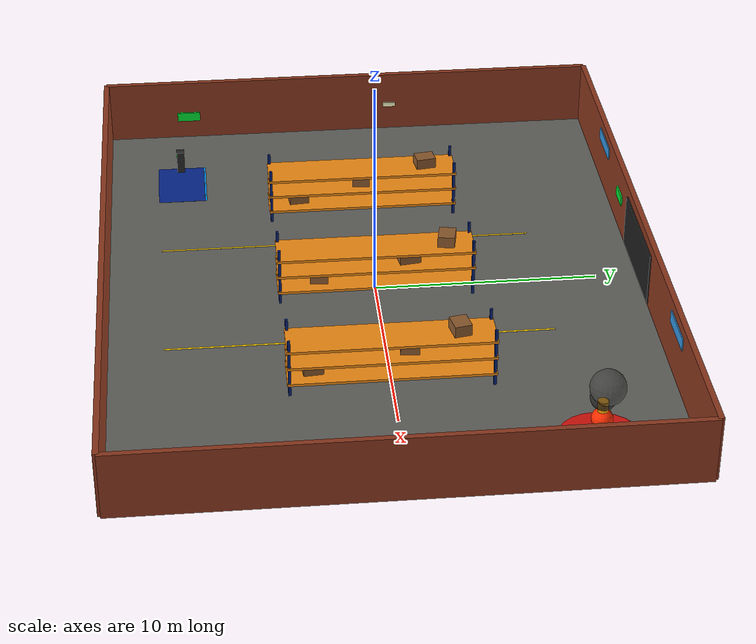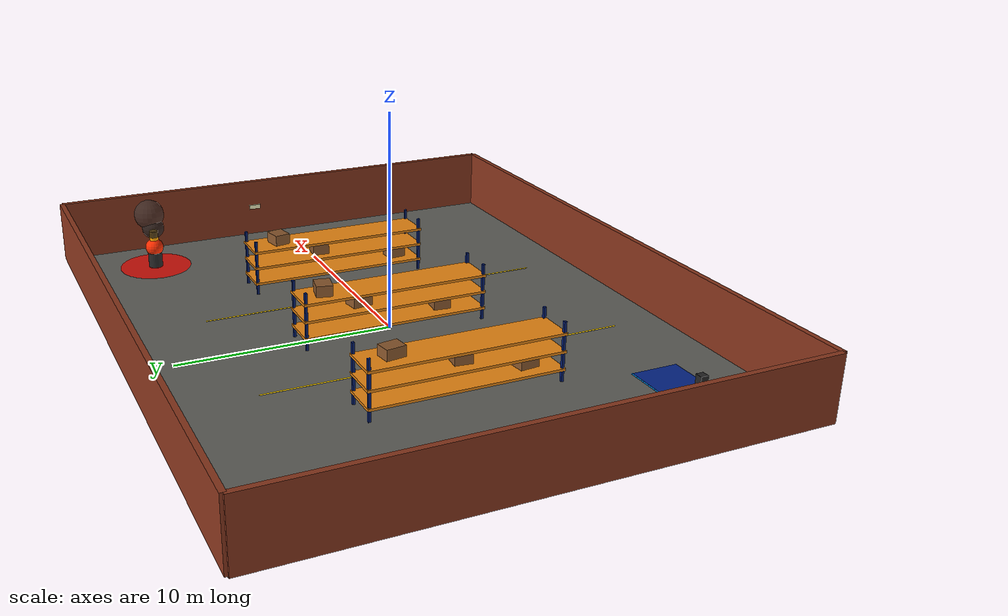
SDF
<?xml version="1.0" ?>
<sdf version="1.6">
  <world name="fireguard_professional_warehouse">

    <include>
      <uri>model://sun</uri>
    </include>

    <scene>
      <ambient>0.35 0.35 0.35 1</ambient>
      <background>0.04 0.04 0.04 1</background>
      <shadows>true</shadows>
    </scene>

    <physics name="default_physics" type="ode">
      <real_time_update_rate>1000</real_time_update_rate>
      <max_step_size>0.001</max_step_size>
      <real_time_factor>1</real_time_factor>
    </physics>

    <!-- Main Lights -->
    <light name="warehouse_light_left" type="point">
      <pose>-7 -2 6 0 0 0</pose>
      <diffuse>1 1 0.95 1</diffuse>
      <specular>0.4 0.4 0.4 1</specular>
      <attenuation>
        <range>18</range>
        <constant>0.6</constant>
        <linear>0.04</linear>
        <quadratic>0.005</quadratic>
      </attenuation>
    </light>

    <light name="warehouse_light_right" type="point">
      <pose>7 -2 6 0 0 0</pose>
      <diffuse>1 1 0.95 1</diffuse>
      <specular>0.4 0.4 0.4 1</specular>
      <attenuation>
        <range>18</range>
        <constant>0.6</constant>
        <linear>0.04</linear>
        <quadratic>0.005</quadratic>
      </attenuation>
    </light>

    <light name="fire_glow" type="point">
      <pose>12 8 2.2 0 0 0</pose>
      <diffuse>1 0.25 0.05 1</diffuse>
      <specular>1 0.15 0.05 1</specular>
      <attenuation>
        <range>10</range>
        <constant>0.8</constant>
        <linear>0.08</linear>
        <quadratic>0.01</quadratic>
      </attenuation>
    </light>

    <!-- Floor -->
    <model name="concrete_floor">
      <static>true</static>
      <pose>0 0 -0.025 0 0 0</pose>
      <link name="link">
        <collision name="collision">
          <geometry>
            <box><size>30 24 0.05</size></box>
          </geometry>
        </collision>
        <visual name="visual">
          <geometry>
            <box><size>30 24 0.05</size></box>
          </geometry>
          <material>
            <ambient>0.28 0.28 0.28 1</ambient>
            <diffuse>0.38 0.38 0.36 1</diffuse>
          </material>
        </visual>
      </link>
    </model>

    <!-- Walls -->
    <model name="wall_back">
      <static>true</static>
      <pose>0 12 1.5 0 0 0</pose>
      <link name="link">
        <collision name="collision">
          <geometry><box><size>30 0.25 3.0</size></box></geometry>
        </collision>
        <visual name="visual">
          <geometry><box><size>30 0.25 3.0</size></box></geometry>
          <material>
            <ambient>0.42 0.16 0.08 1</ambient>
            <diffuse>0.55 0.22 0.12 1</diffuse>
          </material>
        </visual>
      </link>
    </model>

    <model name="wall_front">
      <static>true</static>
      <pose>0 -12 1.5 0 0 0</pose>
      <link name="link">
        <collision name="collision">
          <geometry><box><size>30 0.25 3.0</size></box></geometry>
        </collision>
        <visual name="visual">
          <geometry><box><size>30 0.25 3.0</size></box></geometry>
          <material>
            <ambient>0.42 0.16 0.08 1</ambient>
            <diffuse>0.55 0.22 0.12 1</diffuse>
          </material>
        </visual>
      </link>
    </model>

    <model name="wall_left">
      <static>true</static>
      <pose>-15 0 1.5 0 0 0</pose>
      <link name="link">
        <collision name="collision">
          <geometry><box><size>0.25 24 3.0</size></box></geometry>
        </collision>
        <visual name="visual">
          <geometry><box><size>0.25 24 3.0</size></box></geometry>
          <material>
            <ambient>0.42 0.16 0.08 1</ambient>
            <diffuse>0.55 0.22 0.12 1</diffuse>
          </material>
        </visual>
      </link>
    </model>

    <model name="wall_right">
      <static>true</static>
      <pose>15 0 1.5 0 0 0</pose>
      <link name="link">
        <collision name="collision">
          <geometry><box><size>0.25 24 3.0</size></box></geometry>
        </collision>
        <visual name="visual">
          <geometry><box><size>0.25 24 3.0</size></box></geometry>
          <material>
            <ambient>0.42 0.16 0.08 1</ambient>
            <diffuse>0.55 0.22 0.12 1</diffuse>
          </material>
        </visual>
      </link>
    </model>

    <!-- Warehouse Door -->
    <model name="warehouse_door">
      <static>true</static>
      <pose>0 11.84 1.35 0 0 0</pose>
      <link name="link">
        <visual name="visual">
          <geometry><box><size>5.2 0.08 2.4</size></box></geometry>
          <material>
            <ambient>0.06 0.06 0.06 1</ambient>
            <diffuse>0.12 0.12 0.12 1</diffuse>
          </material>
        </visual>
      </link>
    </model>

    <!-- Windows -->
    <model name="window_left">
      <static>true</static>
      <pose>-8 11.82 2.35 0 0 0</pose>
      <link name="link">
        <visual name="visual">
          <geometry><box><size>2.2 0.05 0.55</size></box></geometry>
          <material>
            <ambient>0.15 0.45 0.75 1</ambient>
            <diffuse>0.2 0.6 0.9 1</diffuse>
            <emissive>0.05 0.15 0.25 1</emissive>
          </material>
        </visual>
      </link>
    </model>

    <model name="window_right">
      <static>true</static>
      <pose>8 11.82 2.35 0 0 0</pose>
      <link name="link">
        <visual name="visual">
          <geometry><box><size>2.2 0.05 0.55</size></box></geometry>
          <material>
            <ambient>0.15 0.45 0.75 1</ambient>
            <diffuse>0.2 0.6 0.9 1</diffuse>
            <emissive>0.05 0.15 0.25 1</emissive>
          </material>
        </visual>
      </link>
    </model>

    <!-- Robot Charging Station -->
    <model name="robot_station_floor">
      <static>true</static>
      <pose>-10 -8.5 0.002 0 0 0</pose>
      <link name="link">
        <visual name="visual">
          <geometry><box><size>3.2 2.2 0.004</size></box></geometry>
          <material>
            <ambient>0.02 0.08 0.25 1</ambient>
            <diffuse>0.02 0.15 0.55 1</diffuse>
            <emissive>0 0.02 0.08 1</emissive>
          </material>
        </visual>
      </link>
    </model>

    <model name="charging_pillar">
      <static>true</static>
      <pose>-11.4 -8.5 0.55 0 0 0</pose>
      <link name="link">
        <visual name="body">
          <geometry><box><size>0.35 0.35 1.1</size></box></geometry>
          <material>
            <ambient>0.08 0.08 0.08 1</ambient>
            <diffuse>0.15 0.15 0.15 1</diffuse>
          </material>
        </visual>
        <visual name="green_light">
          <pose>0 -0.18 0.25 0 0 0</pose>
          <geometry><box><size>0.18 0.02 0.18</size></box></geometry>
          <material>
            <ambient>0 1 0.15 1</ambient>
            <diffuse>0 1 0.15 1</diffuse>
            <emissive>0 1 0.15 1</emissive>
          </material>
        </visual>
      </link>
    </model>

    <!-- Aisle Lines -->
    <model name="aisle_line_left">
      <static>true</static>
      <pose>-4 -1 0.006 0 0 0</pose>
      <link name="link">
        <visual name="visual">
          <geometry><box><size>0.10 17 0.002</size></box></geometry>
          <material>
            <ambient>1 0.82 0 1</ambient>
            <diffuse>1 0.82 0 1</diffuse>
          </material>
        </visual>
      </link>
    </model>

    <model name="aisle_line_right">
      <static>true</static>
      <pose>4 -1 0.006 0 0 0</pose>
      <link name="link">
        <visual name="visual">
          <geometry><box><size>0.10 17 0.002</size></box></geometry>
          <material>
            <ambient>1 0.82 0 1</ambient>
            <diffuse>1 0.82 0 1</diffuse>
          </material>
        </visual>
      </link>
    </model>

    <model name="station_label_line">
      <static>true</static>
      <pose>-10 -7.35 0.006 0 0 0</pose>
      <link name="link">
        <visual name="visual">
          <geometry><box><size>3.2 0.08 0.002</size></box></geometry>
          <material>
            <ambient>0 0.6 1 1</ambient>
            <diffuse>0 0.6 1 1</diffuse>
          </material>
        </visual>
      </link>
    </model>

    <!-- Shelves with boxes -->
    <model name="shelf_left">
      <static>true</static>
      <pose>-7 0 0 0 0 0</pose>

      <link name="frame_collision">
        <pose>0 0 1.15 0 0 0</pose>
        <collision name="collision">
          <geometry><box><size>1.7 8.8 2.3</size></box></geometry>
        </collision>
      </link>

      <link name="visual_parts">
        <visual name="post_1"><pose>-0.8 -4.3 1.35 0 0 0</pose><geometry><box><size>0.12 0.12 2.7</size></box></geometry><material><ambient>0.02 0.07 0.25 1</ambient><diffuse>0.02 0.12 0.45 1</diffuse></material></visual>
        <visual name="post_2"><pose>0.8 -4.3 1.35 0 0 0</pose><geometry><box><size>0.12 0.12 2.7</size></box></geometry><material><ambient>0.02 0.07 0.25 1</ambient><diffuse>0.02 0.12 0.45 1</diffuse></material></visual>
        <visual name="post_3"><pose>-0.8 4.3 1.35 0 0 0</pose><geometry><box><size>0.12 0.12 2.7</size></box></geometry><material><ambient>0.02 0.07 0.25 1</ambient><diffuse>0.02 0.12 0.45 1</diffuse></material></visual>
        <visual name="post_4"><pose>0.8 4.3 1.35 0 0 0</pose><geometry><box><size>0.12 0.12 2.7</size></box></geometry><material><ambient>0.02 0.07 0.25 1</ambient><diffuse>0.02 0.12 0.45 1</diffuse></material></visual>

        <visual name="layer_1"><pose>0 0 0.55 0 0 0</pose><geometry><box><size>1.8 8.8 0.12</size></box></geometry><material><ambient>0.95 0.48 0.05 1</ambient><diffuse>0.95 0.55 0.08 1</diffuse></material></visual>
        <visual name="layer_2"><pose>0 0 1.35 0 0 0</pose><geometry><box><size>1.8 8.8 0.12</size></box></geometry><material><ambient>0.95 0.48 0.05 1</ambient><diffuse>0.95 0.55 0.08 1</diffuse></material></visual>
        <visual name="layer_3"><pose>0 0 2.15 0 0 0</pose><geometry><box><size>1.8 8.8 0.12</size></box></geometry><material><ambient>0.95 0.48 0.05 1</ambient><diffuse>0.95 0.55 0.08 1</diffuse></material></visual>

        <visual name="box_1"><pose>0 -3 0.9 0 0 0.1</pose><geometry><box><size>0.75 0.9 0.55</size></box></geometry><material><ambient>0.38 0.24 0.12 1</ambient><diffuse>0.55 0.35 0.18 1</diffuse></material></visual>
        <visual name="box_2"><pose>0 0 1.7 0 0 -0.1</pose><geometry><box><size>0.8 0.8 0.6</size></box></geometry><material><ambient>0.38 0.24 0.12 1</ambient><diffuse>0.55 0.35 0.18 1</diffuse></material></visual>
        <visual name="box_3"><pose>0 3 2.45 0 0 0.15</pose><geometry><box><size>0.7 0.9 0.5</size></box></geometry><material><ambient>0.38 0.24 0.12 1</ambient><diffuse>0.55 0.35 0.18 1</diffuse></material></visual>
      </link>
    </model>

    <model name="shelf_center">
      <static>true</static>
      <pose>0 0 0 0 0 0</pose>

      <link name="frame_collision">
        <pose>0 0 1.15 0 0 0</pose>
        <collision name="collision">
          <geometry><box><size>1.7 8.8 2.3</size></box></geometry>
        </collision>
      </link>

      <link name="visual_parts">
        <visual name="post_1"><pose>-0.8 -4.3 1.35 0 0 0</pose><geometry><box><size>0.12 0.12 2.7</size></box></geometry><material><ambient>0.02 0.07 0.25 1</ambient><diffuse>0.02 0.12 0.45 1</diffuse></material></visual>
        <visual name="post_2"><pose>0.8 -4.3 1.35 0 0 0</pose><geometry><box><size>0.12 0.12 2.7</size></box></geometry><material><ambient>0.02 0.07 0.25 1</ambient><diffuse>0.02 0.12 0.45 1</diffuse></material></visual>
        <visual name="post_3"><pose>-0.8 4.3 1.35 0 0 0</pose><geometry><box><size>0.12 0.12 2.7</size></box></geometry><material><ambient>0.02 0.07 0.25 1</ambient><diffuse>0.02 0.12 0.45 1</diffuse></material></visual>
        <visual name="post_4"><pose>0.8 4.3 1.35 0 0 0</pose><geometry><box><size>0.12 0.12 2.7</size></box></geometry><material><ambient>0.02 0.07 0.25 1</ambient><diffuse>0.02 0.12 0.45 1</diffuse></material></visual>

        <visual name="layer_1"><pose>0 0 0.55 0 0 0</pose><geometry><box><size>1.8 8.8 0.12</size></box></geometry><material><ambient>0.95 0.48 0.05 1</ambient><diffuse>0.95 0.55 0.08 1</diffuse></material></visual>
        <visual name="layer_2"><pose>0 0 1.35 0 0 0</pose><geometry><box><size>1.8 8.8 0.12</size></box></geometry><material><ambient>0.95 0.48 0.05 1</ambient><diffuse>0.95 0.55 0.08 1</diffuse></material></visual>
        <visual name="layer_3"><pose>0 0 2.15 0 0 0</pose><geometry><box><size>1.8 8.8 0.12</size></box></geometry><material><ambient>0.95 0.48 0.05 1</ambient><diffuse>0.95 0.55 0.08 1</diffuse></material></visual>

        <visual name="box_1"><pose>0 -2.5 0.9 0 0 -0.1</pose><geometry><box><size>0.8 0.8 0.55</size></box></geometry><material><ambient>0.38 0.24 0.12 1</ambient><diffuse>0.55 0.35 0.18 1</diffuse></material></visual>
        <visual name="box_2"><pose>0 1.5 1.7 0 0 0.15</pose><geometry><box><size>0.75 0.95 0.6</size></box></geometry><material><ambient>0.38 0.24 0.12 1</ambient><diffuse>0.55 0.35 0.18 1</diffuse></material></visual>
        <visual name="box_3"><pose>0 3.2 2.45 0 0 -0.2</pose><geometry><box><size>0.9 0.75 0.55</size></box></geometry><material><ambient>0.38 0.24 0.12 1</ambient><diffuse>0.55 0.35 0.18 1</diffuse></material></visual>
      </link>
    </model>

    <model name="shelf_right">
      <static>true</static>
      <pose>7 0 0 0 0 0</pose>

      <link name="frame_collision">
        <pose>0 0 1.15 0 0 0</pose>
        <collision name="collision">
          <geometry><box><size>1.7 8.8 2.3</size></box></geometry>
        </collision>
      </link>

      <link name="visual_parts">
        <visual name="post_1"><pose>-0.8 -4.3 1.35 0 0 0</pose><geometry><box><size>0.12 0.12 2.7</size></box></geometry><material><ambient>0.02 0.07 0.25 1</ambient><diffuse>0.02 0.12 0.45 1</diffuse></material></visual>
        <visual name="post_2"><pose>0.8 -4.3 1.35 0 0 0</pose><geometry><box><size>0.12 0.12 2.7</size></box></geometry><material><ambient>0.02 0.07 0.25 1</ambient><diffuse>0.02 0.12 0.45 1</diffuse></material></visual>
        <visual name="post_3"><pose>-0.8 4.3 1.35 0 0 0</pose><geometry><box><size>0.12 0.12 2.7</size></box></geometry><material><ambient>0.02 0.07 0.25 1</ambient><diffuse>0.02 0.12 0.45 1</diffuse></material></visual>
        <visual name="post_4"><pose>0.8 4.3 1.35 0 0 0</pose><geometry><box><size>0.12 0.12 2.7</size></box></geometry><material><ambient>0.02 0.07 0.25 1</ambient><diffuse>0.02 0.12 0.45 1</diffuse></material></visual>

        <visual name="layer_1"><pose>0 0 0.55 0 0 0</pose><geometry><box><size>1.8 8.8 0.12</size></box></geometry><material><ambient>0.95 0.48 0.05 1</ambient><diffuse>0.95 0.55 0.08 1</diffuse></material></visual>
        <visual name="layer_2"><pose>0 0 1.35 0 0 0</pose><geometry><box><size>1.8 8.8 0.12</size></box></geometry><material><ambient>0.95 0.48 0.05 1</ambient><diffuse>0.95 0.55 0.08 1</diffuse></material></visual>
        <visual name="layer_3"><pose>0 0 2.15 0 0 0</pose><geometry><box><size>1.8 8.8 0.12</size></box></geometry><material><ambient>0.95 0.48 0.05 1</ambient><diffuse>0.95 0.55 0.08 1</diffuse></material></visual>

        <visual name="box_1"><pose>0 -3.3 0.9 0 0 0.1</pose><geometry><box><size>0.75 0.85 0.55</size></box></geometry><material><ambient>0.38 0.24 0.12 1</ambient><diffuse>0.55 0.35 0.18 1</diffuse></material></visual>
        <visual name="box_2"><pose>0 0.8 1.7 0 0 -0.1</pose><geometry><box><size>0.8 0.8 0.6</size></box></geometry><material><ambient>0.38 0.24 0.12 1</ambient><diffuse>0.55 0.35 0.18 1</diffuse></material></visual>
        <visual name="box_3"><pose>0 2.9 2.45 0 0 0.2</pose><geometry><box><size>0.85 0.75 0.55</size></box></geometry><material><ambient>0.38 0.24 0.12 1</ambient><diffuse>0.55 0.35 0.18 1</diffuse></material></visual>
      </link>
    </model>

    <!-- Fire Zone -->
    <model name="hazard_area">
      <static>true</static>
      <pose>12 8 0.01 0 0 0</pose>
      <link name="link">
        <visual name="visual">
          <geometry><cylinder><radius>1.8</radius><length>0.02</length></cylinder></geometry>
          <material>
            <ambient>1 0.05 0.02 0.8</ambient>
            <diffuse>1 0.05 0.02 0.8</diffuse>
          </material>
        </visual>
      </link>
    </model>

    <model name="fire_source">
      <static>true</static>
      <pose>12 8 0.45 0 0 0</pose>
      <link name="link">
        <collision name="collision">
          <geometry><cylinder><radius>0.35</radius><length>0.9</length></cylinder></geometry>
        </collision>
        <visual name="barrel">
          <geometry><cylinder><radius>0.35</radius><length>0.9</length></cylinder></geometry>
          <material><ambient>0.08 0.08 0.08 1</ambient><diffuse>0.15 0.15 0.15 1</diffuse></material>
        </visual>
      </link>
    </model>

    <model name="flame_core">
      <static>true</static>
      <pose>12 8 1.05 0 0 0</pose>
      <link name="link">
        <visual name="visual">
          <geometry><sphere><radius>0.45</radius></sphere></geometry>
          <material>
            <ambient>1 0.12 0 1</ambient>
            <diffuse>1 0.18 0 1</diffuse>
            <emissive>1 0.25 0 1</emissive>
          </material>
        </visual>
      </link>
    </model>

    <model name="flame_upper">
      <static>true</static>
      <pose>12 8 1.55 0 0 0</pose>
      <link name="link">
        <visual name="visual">
          <geometry><cylinder><radius>0.22</radius><length>0.75</length></cylinder></geometry>
          <material>
            <ambient>1 0.55 0 1</ambient>
            <diffuse>1 0.65 0 1</diffuse>
            <emissive>1 0.45 0 1</emissive>
          </material>
        </visual>
      </link>
    </model>

    <model name="smoke_1">
      <static>true</static>
      <pose>12 8 2.1 0 0 0</pose>
      <link name="link">
        <visual name="visual">
          <geometry><sphere><radius>0.55</radius></sphere></geometry>
          <material><ambient>0.18 0.18 0.18 0.75</ambient><diffuse>0.18 0.18 0.18 0.75</diffuse></material>
        </visual>
      </link>
    </model>

    <model name="smoke_2">
      <static>true</static>
      <pose>12.25 8.1 2.75 0 0 0</pose>
      <link name="link">
        <visual name="visual">
          <geometry><sphere><radius>0.75</radius></sphere></geometry>
          <material><ambient>0.25 0.25 0.25 0.55</ambient><diffuse>0.25 0.25 0.25 0.55</diffuse></material>
        </visual>
      </link>
    </model>

    <!-- Fire safety signs and emergency lights -->
    <model name="exit_sign_left">
      <static>true</static>
      <pose>-13.8 -8 1.7 0 0 1.57</pose>
      <link name="link">
        <visual name="visual">
          <geometry><box><size>1.1 0.07 0.45</size></box></geometry>
          <material>
            <ambient>0 0.9 0.2 1</ambient>
            <diffuse>0 0.9 0.2 1</diffuse>
            <emissive>0 0.4 0.1 1</emissive>
          </material>
        </visual>
      </link>
    </model>

    <model name="exit_sign_back">
      <static>true</static>
      <pose>-4 11.78 1.8 0 0 0</pose>
      <link name="link">
        <visual name="visual">
          <geometry><box><size>1.1 0.07 0.45</size></box></geometry>
          <material>
            <ambient>0 0.9 0.2 1</ambient>
            <diffuse>0 0.9 0.2 1</diffuse>
            <emissive>0 0.4 0.1 1</emissive>
          </material>
        </visual>
      </link>
    </model>

    <model name="wall_emergency_light_1">
      <static>true</static>
      <pose>-13.8 2 1.9 0 0 1.57</pose>
      <link name="link">
        <visual name="visual">
          <geometry><box><size>0.6 0.06 0.22</size></box></geometry>
          <material>
            <ambient>1 1 0.8 1</ambient>
            <diffuse>1 1 0.8 1</diffuse>
            <emissive>0.8 0.8 0.5 1</emissive>
          </material>
        </visual>
      </link>
    </model>

    <model name="wall_emergency_light_2">
      <static>true</static>
      <pose>13.8 2 1.9 0 0 1.57</pose>
      <link name="link">
        <visual name="visual">
          <geometry><box><size>0.6 0.06 0.22</size></box></geometry>
          <material>
            <ambient>1 1 0.8 1</ambient>
            <diffuse>1 1 0.8 1</diffuse>
            <emissive>0.8 0.8 0.5 1</emissive>
          </material>
        </visual>
      </link>
    </model>

  </world>
</sdf>
